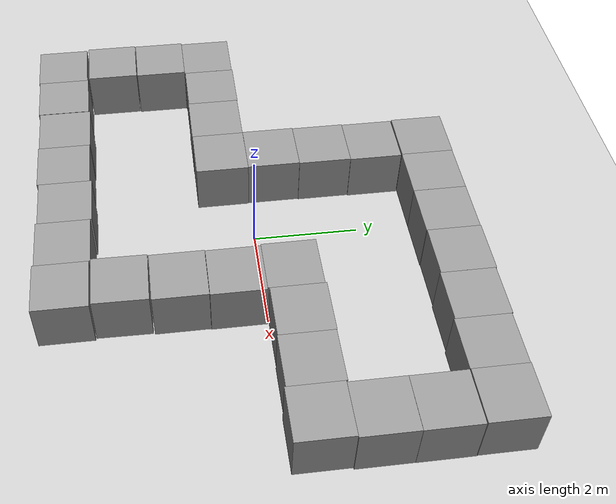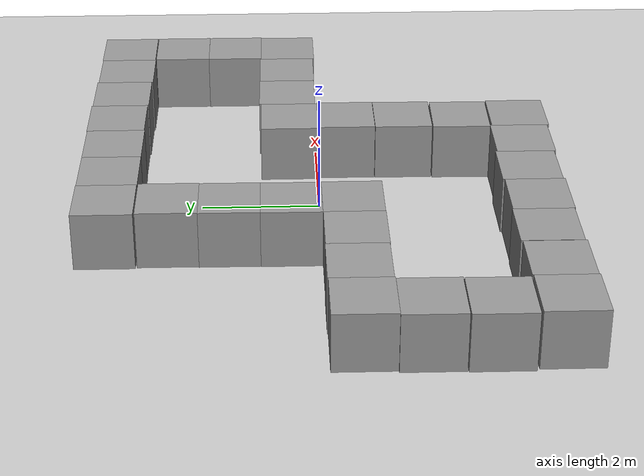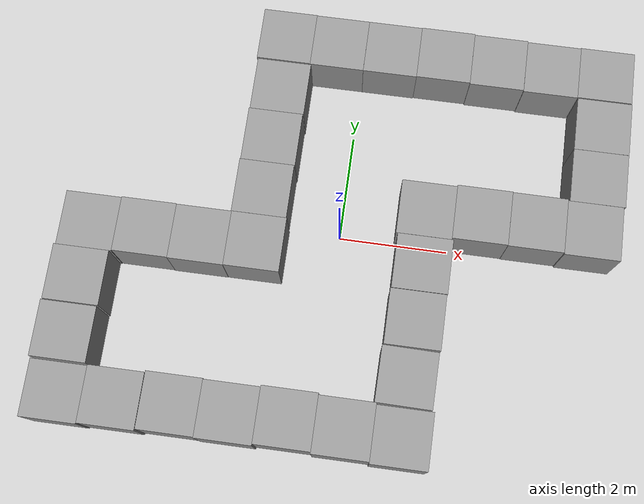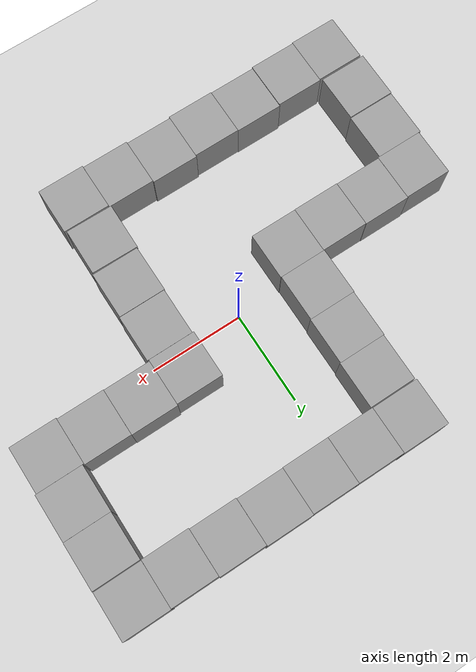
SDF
<sdf version="1.4">
 <world name="default">
  <light name="sun" type="directional">
   <pose>0 0 10 0 -0 0</pose>
   <diffuse>0.8 0.8 0.8 1</diffuse>
   <specular>0.2 0.2 0.2 1</specular>
   <attenuation>
    <range>1000</range>
    <constant>0.9</constant>
    <linear>0.01</linear>
    <quadratic>0.001</quadratic>
   </attenuation>
   <direction>-0.5 0.1 -0.9</direction>
  </light>
  <model name="ground_plane">
   <static>1</static>
   <link name="link">
    <collision name="collision">
     <geometry><plane><normal>0 0 1</normal><size>100 100</size></plane></geometry>
     <surface><friction><ode><mu>100</mu><mu2>50</mu2></ode></friction></surface>
    </collision>
    <visual name="visual">
     <cast_shadows>0</cast_shadows>
     <geometry><plane><normal>0 0 1</normal><size>100 100</size></plane></geometry>
     <material>
      <script><uri>file://media/materials/scripts/gazebo.material</uri><name>Gazebo/Grey</name></script>
     </material>
    </visual>
    <velocity_decay><linear>0</linear><angular>0</angular></velocity_decay>
   </link>
  </model>
  <physics type="ode">
   <max_step_size>0.001</max_step_size>
   <real_time_factor>1</real_time_factor>
   <real_time_update_rate>1000</real_time_update_rate>
   <gravity>0 0 -9.8</gravity>
  </physics>
  <scene><ambient>0.4 0.4 0.4 1</ambient><background>0.7 0.7 0.7 1</background><shadows>1</shadows></scene>
  <spherical_coordinates>
   <surface_model>EARTH_WGS84</surface_model>
   <latitude_deg>0</latitude_deg>
   <longitude_deg>0</longitude_deg>
   <elevation>0</elevation>
   <heading_deg>0</heading_deg>
  </spherical_coordinates>
  <model name="unit_box_1">
   <pose>-1.45968 -0.499124 0.5 0 -0 9e-06</pose>
   <link name="link">
    <inertial>
     <mass>1</mass>
     <inertia><ixx>1</ixx><ixy>0</ixy><ixz>0</ixz><iyy>1</iyy><iyz>0</iyz><izz>1</izz></inertia>
    </inertial>
    <collision name="collision"><geometry><box><size>1 1 1</size></box></geometry></collision>
    <visual name="visual">
     <geometry><box><size>1 1 1</size></box></geometry>
     <material>
      <script><uri>file://media/materials/scripts/gazebo.material</uri><name>Gazebo/Grey</name></script>
     </material>
    </visual>
    <velocity_decay><linear>0</linear><angular>0</angular></velocity_decay>
   </link>
   <static>0</static>
  </model>
  <model name="unit_box_2">
   <pose>-1.47086 0.500953 0.5 0 0 -0.000145</pose>
   <link name="link">
    <inertial>
     <mass>1</mass>
     <inertia><ixx>1</ixx><ixy>0</ixy><ixz>0</ixz><iyy>1</iyy><iyz>0</iyz><izz>1</izz></inertia>
    </inertial>
    <collision name="collision"><geometry><box><size>1 1 1</size></box></geometry></collision>
    <visual name="visual">
     <geometry><box><size>1 1 1</size></box></geometry>
     <material>
      <script><uri>file://media/materials/scripts/gazebo.material</uri><name>Gazebo/Grey</name></script>
     </material>
    </visual>
    <velocity_decay><linear>0</linear><angular>0</angular></velocity_decay>
   </link>
   <static>0</static>
  </model>
  <model name="unit_box_3">
   <pose>-1.45802 1.50095 0.5 -0 -0 -0.000148</pose>
   <link name="link">
    <inertial>
     <mass>1</mass>
     <inertia><ixx>1</ixx><ixy>0</ixy><ixz>0</ixz><iyy>1</iyy><iyz>0</iyz><izz>1</izz></inertia>
    </inertial>
    <collision name="collision"><geometry><box><size>1 1 1</size></box></geometry></collision>
    <visual name="visual">
     <geometry><box><size>1 1 1</size></box></geometry>
     <material>
      <script><uri>file://media/materials/scripts/gazebo.material</uri><name>Gazebo/Grey</name></script>
     </material>
    </visual>
    <velocity_decay><linear>0</linear><angular>0</angular></velocity_decay>
   </link>
   <static>0</static>
  </model>
  <model name="unit_box_4">
   <pose>-1.44332 2.50095 0.5 0 -0 -0.000155</pose>
   <link name="link">
    <inertial>
     <mass>1</mass>
     <inertia><ixx>1</ixx><ixy>0</ixy><ixz>0</ixz><iyy>1</iyy><iyz>0</iyz><izz>1</izz></inertia>
    </inertial>
    <collision name="collision"><geometry><box><size>1 1 1</size></box></geometry></collision>
    <visual name="visual">
     <geometry><box><size>1 1 1</size></box></geometry>
     <material>
      <script><uri>file://media/materials/scripts/gazebo.material</uri><name>Gazebo/Grey</name></script>
     </material>
    </visual>
    <velocity_decay><linear>0</linear><angular>0</angular></velocity_decay>
   </link>
   <static>0</static>
  </model>
  <model name="unit_box_5">
   <pose>-2.45968 -0.503258 0.5 0 -0 1.3e-05</pose>
   <link name="link">
    <inertial>
     <mass>1</mass>
     <inertia><ixx>1</ixx><ixy>0</ixy><ixz>0</ixz><iyy>1</iyy><iyz>0</iyz><izz>1</izz></inertia>
    </inertial>
    <collision name="collision"><geometry><box><size>1 1 1</size></box></geometry></collision>
    <visual name="visual">
     <geometry><box><size>1 1 1</size></box></geometry>
     <material>
      <script><uri>file://media/materials/scripts/gazebo.material</uri><name>Gazebo/Grey</name></script>
     </material>
    </visual>
    <velocity_decay><linear>0</linear><angular>0</angular></velocity_decay>
   </link>
   <static>0</static>
  </model>
  <model name="unit_box_6">
   <pose>-3.45969 -0.495964 0.5 0 -0 9e-06</pose>
   <link name="link">
    <inertial>
     <mass>1</mass>
     <inertia><ixx>1</ixx><ixy>0</ixy><ixz>0</ixz><iyy>1</iyy><iyz>0</iyz><izz>1</izz></inertia>
    </inertial>
    <collision name="collision"><geometry><box><size>1 1 1</size></box></geometry></collision>
    <visual name="visual">
     <geometry><box><size>1 1 1</size></box></geometry>
     <material>
      <script><uri>file://media/materials/scripts/gazebo.material</uri><name>Gazebo/Grey</name></script>
     </material>
    </visual>
    <velocity_decay><linear>0</linear><angular>0</angular></velocity_decay>
   </link>
   <static>0</static>
  </model>
  <model name="unit_box_7">
   <pose>1.54004 -0.511689 0.5 0 0 -0.000123</pose>
   <link name="link">
    <inertial>
     <mass>1</mass>
     <inertia><ixx>1</ixx><ixy>0</ixy><ixz>0</ixz><iyy>1</iyy><iyz>0</iyz><izz>1</izz></inertia>
    </inertial>
    <collision name="collision"><geometry><box><size>1 1 1</size></box></geometry></collision>
    <visual name="visual">
     <geometry><box><size>1 1 1</size></box></geometry>
     <material>
      <script><uri>file://media/materials/scripts/gazebo.material</uri><name>Gazebo/Grey</name></script>
     </material>
    </visual>
    <velocity_decay><linear>0</linear><angular>0</angular></velocity_decay>
   </link>
   <static>0</static>
  </model>
  <model name="unit_box_8">
   <pose>1.50851 0.488693 0.5 0 0 -0.000188</pose>
   <link name="link">
    <inertial>
     <mass>1</mass>
     <inertia><ixx>1</ixx><ixy>0</ixy><ixz>0</ixz><iyy>1</iyy><iyz>0</iyz><izz>1</izz></inertia>
    </inertial>
    <collision name="collision"><geometry><box><size>1 1 1</size></box></geometry></collision>
    <visual name="visual">
     <geometry><box><size>1 1 1</size></box></geometry>
     <material>
      <script><uri>file://media/materials/scripts/gazebo.material</uri><name>Gazebo/Grey</name></script>
     </material>
    </visual>
    <velocity_decay><linear>0</linear><angular>0</angular></velocity_decay>
   </link>
   <static>0</static>
  </model>
  <model name="unit_box_9">
   <pose>3.50857 0.507548 0.5 -0 -0 -0.00028</pose>
   <link name="link">
    <inertial>
     <mass>1</mass>
     <inertia><ixx>1</ixx><ixy>0</ixy><ixz>0</ixz><iyy>1</iyy><iyz>0</iyz><izz>1</izz></inertia>
    </inertial>
    <collision name="collision"><geometry><box><size>1 1 1</size></box></geometry></collision>
    <visual name="visual">
     <geometry><box><size>1 1 1</size></box></geometry>
     <material>
      <script><uri>file://media/materials/scripts/gazebo.material</uri><name>Gazebo/Grey</name></script>
     </material>
    </visual>
    <velocity_decay><linear>0</linear><angular>0</angular></velocity_decay>
   </link>
   <static>0</static>
  </model>
  <model name="unit_box_10">
   <pose>1.52702 -1.51699 0.5 0 -0 0</pose>
   <link name="link">
    <inertial>
     <mass>1</mass>
     <inertia><ixx>1</ixx><ixy>0</ixy><ixz>0</ixz><iyy>1</iyy><iyz>0</iyz><izz>1</izz></inertia>
    </inertial>
    <collision name="collision"><geometry><box><size>1 1 1</size></box></geometry></collision>
    <visual name="visual">
     <geometry><box><size>1 1 1</size></box></geometry>
     <material>
      <script><uri>file://media/materials/scripts/gazebo.material</uri><name>Gazebo/Grey</name></script>
     </material>
    </visual>
    <velocity_decay><linear>0</linear><angular>0</angular></velocity_decay>
   </link>
   <static>0</static>
  </model>
  <model name="unit_box_11">
   <pose>1.50079 -2.53931 0.5 0 0 -0.013563</pose>
   <link name="link">
    <inertial>
     <mass>1</mass>
     <inertia><ixx>1</ixx><ixy>0</ixy><ixz>0</ixz><iyy>1</iyy><iyz>0</iyz><izz>1</izz></inertia>
    </inertial>
    <collision name="collision"><geometry><box><size>1 1 1</size></box></geometry></collision>
    <visual name="visual">
     <geometry><box><size>1 1 1</size></box></geometry>
     <material>
      <script><uri>file://media/materials/scripts/gazebo.material</uri><name>Gazebo/Grey</name></script>
     </material>
    </visual>
    <velocity_decay><linear>0</linear><angular>0</angular></velocity_decay>
   </link>
   <static>0</static>
  </model>
  <model name="unit_box_12">
   <pose>2.50854 0.516937 0.5 0 0 -0.000209</pose>
   <link name="link">
    <inertial>
     <mass>1</mass>
     <inertia><ixx>1</ixx><ixy>0</ixy><ixz>0</ixz><iyy>1</iyy><iyz>0</iyz><izz>1</izz></inertia>
    </inertial>
    <collision name="collision"><geometry><box><size>1 1 1</size></box></geometry></collision>
    <visual name="visual">
     <geometry><box><size>1 1 1</size></box></geometry>
     <material>
      <script><uri>file://media/materials/scripts/gazebo.material</uri><name>Gazebo/Grey</name></script>
     </material>
    </visual>
    <velocity_decay><linear>0</linear><angular>0</angular></velocity_decay>
   </link>
   <static>0</static>
  </model>
  <model name="unit_box_13">
   <pose>1.53251 -3.56532 0.5 0 -0 -0.001281</pose>
   <link name="link">
    <inertial>
     <mass>1</mass>
     <inertia><ixx>1</ixx><ixy>0</ixy><ixz>0</ixz><iyy>1</iyy><iyz>0</iyz><izz>1</izz></inertia>
    </inertial>
    <collision name="collision"><geometry><box><size>1 1 1</size></box></geometry></collision>
    <visual name="visual">
     <geometry><box><size>1 1 1</size></box></geometry>
     <material>
      <script><uri>file://media/materials/scripts/gazebo.material</uri><name>Gazebo/Grey</name></script>
     </material>
    </visual>
    <velocity_decay><linear>0</linear><angular>0</angular></velocity_decay>
   </link>
   <static>0</static>
  </model>
  <model name="unit_box_14">
   <pose>0.532552 -3.53237 0.5 0 -0 -0.001288</pose>
   <link name="link">
    <inertial>
     <mass>1</mass>
     <inertia><ixx>1</ixx><ixy>0</ixy><ixz>0</ixz><iyy>1</iyy><iyz>0</iyz><izz>1</izz></inertia>
    </inertial>
    <collision name="collision"><geometry><box><size>1 1 1</size></box></geometry></collision>
    <visual name="visual">
     <geometry><box><size>1 1 1</size></box></geometry>
     <material>
      <script><uri>file://media/materials/scripts/gazebo.material</uri><name>Gazebo/Grey</name></script>
     </material>
    </visual>
    <velocity_decay><linear>0</linear><angular>0</angular></velocity_decay>
   </link>
   <static>0</static>
  </model>
  <model name="unit_box_15">
   <pose>-0.46743 -3.49946 0.5 0 0 -0.001279</pose>
   <link name="link">
    <inertial>
     <mass>1</mass>
     <inertia><ixx>1</ixx><ixy>0</ixy><ixz>0</ixz><iyy>1</iyy><iyz>0</iyz><izz>1</izz></inertia>
    </inertial>
    <collision name="collision"><geometry><box><size>1 1 1</size></box></geometry></collision>
    <visual name="visual">
     <geometry><box><size>1 1 1</size></box></geometry>
     <material>
      <script><uri>file://media/materials/scripts/gazebo.material</uri><name>Gazebo/Grey</name></script>
     </material>
    </visual>
    <velocity_decay><linear>0</linear><angular>0</angular></velocity_decay>
   </link>
   <static>0</static>
  </model>
  <model name="unit_box_16">
   <pose>-1.46748 -3.5281 0.5 0 0 -0.001277</pose>
   <link name="link">
    <inertial>
     <mass>1</mass>
     <inertia><ixx>1</ixx><ixy>0</ixy><ixz>0</ixz><iyy>1</iyy><iyz>0</iyz><izz>1</izz></inertia>
    </inertial>
    <collision name="collision"><geometry><box><size>1 1 1</size></box></geometry></collision>
    <visual name="visual">
     <geometry><box><size>1 1 1</size></box></geometry>
     <material>
      <script><uri>file://media/materials/scripts/gazebo.material</uri><name>Gazebo/Grey</name></script>
     </material>
    </visual>
    <velocity_decay><linear>0</linear><angular>0</angular></velocity_decay>
   </link>
   <static>0</static>
  </model>
  <model name="unit_box_17">
   <pose>-2.46747 -3.51496 0.5 0 0 -0.001263</pose>
   <link name="link">
    <inertial>
     <mass>1</mass>
     <inertia><ixx>1</ixx><ixy>0</ixy><ixz>0</ixz><iyy>1</iyy><iyz>0</iyz><izz>1</izz></inertia>
    </inertial>
    <collision name="collision"><geometry><box><size>1 1 1</size></box></geometry></collision>
    <visual name="visual">
     <geometry><box><size>1 1 1</size></box></geometry>
     <material>
      <script><uri>file://media/materials/scripts/gazebo.material</uri><name>Gazebo/Grey</name></script>
     </material>
    </visual>
    <velocity_decay><linear>0</linear><angular>0</angular></velocity_decay>
   </link>
   <static>0</static>
  </model>
  <model name="unit_box_18">
   <pose>-3.47427 -3.54314 0.5 0 -0 2.6e-05</pose>
   <link name="link">
    <inertial>
     <mass>1</mass>
     <inertia><ixx>1</ixx><ixy>0</ixy><ixz>0</ixz><iyy>1</iyy><iyz>0</iyz><izz>1</izz></inertia>
    </inertial>
    <collision name="collision"><geometry><box><size>1 1 1</size></box></geometry></collision>
    <visual name="visual">
     <geometry><box><size>1 1 1</size></box></geometry>
     <material>
      <script><uri>file://media/materials/scripts/gazebo.material</uri><name>Gazebo/Grey</name></script>
     </material>
    </visual>
    <velocity_decay><linear>0</linear><angular>0</angular></velocity_decay>
   </link>
   <static>0</static>
  </model>
  <model name="unit_box_19">
   <pose>-1.4681 3.52257 0.5 0 -0 1.1e-05</pose>
   <link name="link">
    <inertial>
     <mass>1</mass>
     <inertia><ixx>1</ixx><ixy>0</ixy><ixz>0</ixz><iyy>1</iyy><iyz>0</iyz><izz>1</izz></inertia>
    </inertial>
    <collision name="collision"><geometry><box><size>1 1 1</size></box></geometry></collision>
    <visual name="visual">
     <geometry><box><size>1 1 1</size></box></geometry>
     <material>
      <script><uri>file://media/materials/scripts/gazebo.material</uri><name>Gazebo/Grey</name></script>
     </material>
    </visual>
    <velocity_decay><linear>0</linear><angular>0</angular></velocity_decay>
   </link>
   <static>0</static>
  </model>
  <model name="unit_box_20">
   <pose>-0.468078 3.51571 0.5 0 -0 4.4e-05</pose>
   <link name="link">
    <inertial>
     <mass>1</mass>
     <inertia><ixx>1</ixx><ixy>0</ixy><ixz>0</ixz><iyy>1</iyy><iyz>0</iyz><izz>1</izz></inertia>
    </inertial>
    <collision name="collision"><geometry><box><size>1 1 1</size></box></geometry></collision>
    <visual name="visual">
     <geometry><box><size>1 1 1</size></box></geometry>
     <material>
      <script><uri>file://media/materials/scripts/gazebo.material</uri><name>Gazebo/Grey</name></script>
     </material>
    </visual>
    <velocity_decay><linear>0</linear><angular>0</angular></velocity_decay>
   </link>
   <static>0</static>
  </model>
  <model name="unit_box_21">
   <pose>0.532049 3.51619 0.5 0 -0 0.000272</pose>
   <link name="link">
    <inertial>
     <mass>1</mass>
     <inertia><ixx>1</ixx><ixy>0</ixy><ixz>0</ixz><iyy>1</iyy><iyz>0</iyz><izz>1</izz></inertia>
    </inertial>
    <collision name="collision"><geometry><box><size>1 1 1</size></box></geometry></collision>
    <visual name="visual">
     <geometry><box><size>1 1 1</size></box></geometry>
     <material>
      <script><uri>file://media/materials/scripts/gazebo.material</uri><name>Gazebo/Grey</name></script>
     </material>
    </visual>
    <velocity_decay><linear>0</linear><angular>0</angular></velocity_decay>
   </link>
   <static>0</static>
  </model>
  <model name="unit_box_22">
   <pose>1.53211 3.52553 0.5 0 -0 0.000348</pose>
   <link name="link">
    <inertial>
     <mass>1</mass>
     <inertia><ixx>1</ixx><ixy>0</ixy><ixz>0</ixz><iyy>1</iyy><iyz>0</iyz><izz>1</izz></inertia>
    </inertial>
    <collision name="collision"><geometry><box><size>1 1 1</size></box></geometry></collision>
    <visual name="visual">
     <geometry><box><size>1 1 1</size></box></geometry>
     <material>
      <script><uri>file://media/materials/scripts/gazebo.material</uri><name>Gazebo/Grey</name></script>
     </material>
    </visual>
    <velocity_decay><linear>0</linear><angular>0</angular></velocity_decay>
   </link>
   <static>0</static>
  </model>
  <model name="unit_box_23">
   <pose>2.53216 3.50819 0.5 0 -0 0.000432</pose>
   <link name="link">
    <inertial>
     <mass>1</mass>
     <inertia><ixx>1</ixx><ixy>0</ixy><ixz>0</ixz><iyy>1</iyy><iyz>0</iyz><izz>1</izz></inertia>
    </inertial>
    <collision name="collision"><geometry><box><size>1 1 1</size></box></geometry></collision>
    <visual name="visual">
     <geometry><box><size>1 1 1</size></box></geometry>
     <material>
      <script><uri>file://media/materials/scripts/gazebo.material</uri><name>Gazebo/Grey</name></script>
     </material>
    </visual>
    <velocity_decay><linear>0</linear><angular>0</angular></velocity_decay>
   </link>
   <static>0</static>
  </model>
  <model name="unit_box_24">
   <pose>3.53224 3.48928 0.5 0 -0 0.000558</pose>
   <link name="link">
    <inertial>
     <mass>1</mass>
     <inertia><ixx>1</ixx><ixy>0</ixy><ixz>0</ixz><iyy>1</iyy><iyz>0</iyz><izz>1</izz></inertia>
    </inertial>
    <collision name="collision"><geometry><box><size>1 1 1</size></box></geometry></collision>
    <visual name="visual">
     <geometry><box><size>1 1 1</size></box></geometry>
     <material>
      <script><uri>file://media/materials/scripts/gazebo.material</uri><name>Gazebo/Grey</name></script>
     </material>
    </visual>
    <velocity_decay><linear>0</linear><angular>0</angular></velocity_decay>
   </link>
   <static>0</static>
  </model>
  <model name="unit_box_25">
   <pose>4.53226 3.49983 0.5 0 -0 0.000608</pose>
   <link name="link">
    <inertial>
     <mass>1</mass>
     <inertia><ixx>1</ixx><ixy>0</ixy><ixz>0</ixz><iyy>1</iyy><iyz>0</iyz><izz>1</izz></inertia>
    </inertial>
    <collision name="collision"><geometry><box><size>1 1 1</size></box></geometry></collision>
    <visual name="visual">
     <geometry><box><size>1 1 1</size></box></geometry>
     <material>
      <script><uri>file://media/materials/scripts/gazebo.material</uri><name>Gazebo/Grey</name></script>
     </material>
    </visual>
    <velocity_decay><linear>0</linear><angular>0</angular></velocity_decay>
   </link>
   <static>0</static>
  </model>
  <model name="unit_box_26">
   <pose>4.54019 2.48352 0.5 0 -0 0.000534</pose>
   <link name="link">
    <inertial>
     <mass>1</mass>
     <inertia><ixx>1</ixx><ixy>0</ixy><ixz>0</ixz><iyy>1</iyy><iyz>0</iyz><izz>1</izz></inertia>
    </inertial>
    <collision name="collision"><geometry><box><size>1 1 1</size></box></geometry></collision>
    <visual name="visual">
     <geometry><box><size>1 1 1</size></box></geometry>
     <material>
      <script><uri>file://media/materials/scripts/gazebo.material</uri><name>Gazebo/Grey</name></script>
     </material>
    </visual>
    <velocity_decay><linear>0</linear><angular>0</angular></velocity_decay>
   </link>
   <static>0</static>
  </model>
  <model name="unit_box_27">
   <pose>4.53699 1.4831 0.5 0 0 -0.000273</pose>
   <link name="link">
    <inertial>
     <mass>1</mass>
     <inertia><ixx>1</ixx><ixy>0</ixy><ixz>0</ixz><iyy>1</iyy><iyz>0</iyz><izz>1</izz></inertia>
    </inertial>
    <collision name="collision"><geometry><box><size>1 1 1</size></box></geometry></collision>
    <visual name="visual">
     <geometry><box><size>1 1 1</size></box></geometry>
     <material>
      <script><uri>file://media/materials/scripts/gazebo.material</uri><name>Gazebo/Grey</name></script>
     </material>
    </visual>
    <velocity_decay><linear>0</linear><angular>0</angular></velocity_decay>
   </link>
   <static>0</static>
  </model>
  <model name="unit_box_28">
   <pose>4.5086 0.482978 0.5 0 0 -0.000219</pose>
   <link name="link">
    <inertial>
     <mass>1</mass>
     <inertia><ixx>1</ixx><ixy>0</ixy><ixz>0</ixz><iyy>1</iyy><iyz>0</iyz><izz>1</izz></inertia>
    </inertial>
    <collision name="collision"><geometry><box><size>1 1 1</size></box></geometry></collision>
    <visual name="visual">
     <geometry><box><size>1 1 1</size></box></geometry>
     <material>
      <script><uri>file://media/materials/scripts/gazebo.material</uri><name>Gazebo/Grey</name></script>
     </material>
    </visual>
    <velocity_decay><linear>0</linear><angular>0</angular></velocity_decay>
   </link>
   <static>0</static>
  </model>
  <model name="unit_box_29">
   <pose>-4.45978 -0.509522 0.5 0 0 -0.000156</pose>
   <link name="link">
    <inertial>
     <mass>1</mass>
     <inertia><ixx>1</ixx><ixy>0</ixy><ixz>0</ixz><iyy>1</iyy><iyz>0</iyz><izz>1</izz></inertia>
    </inertial>
    <collision name="collision"><geometry><box><size>1 1 1</size></box></geometry></collision>
    <visual name="visual">
     <geometry><box><size>1 1 1</size></box></geometry>
     <material>
      <script><uri>file://media/materials/scripts/gazebo.material</uri><name>Gazebo/Grey</name></script>
     </material>
    </visual>
    <velocity_decay><linear>0</linear><angular>0</angular></velocity_decay>
   </link>
   <static>0</static>
  </model>
  <model name="unit_box_30">
   <pose>-4.47427 -3.56185 0.5 0 -0 2.6e-05</pose>
   <link name="link">
    <inertial>
     <mass>1</mass>
     <inertia><ixx>1</ixx><ixy>0</ixy><ixz>0</ixz><iyy>1</iyy><iyz>0</iyz><izz>1</izz></inertia>
    </inertial>
    <collision name="collision"><geometry><box><size>1 1 1</size></box></geometry></collision>
    <visual name="visual">
     <geometry><box><size>1 1 1</size></box></geometry>
     <material>
      <script><uri>file://media/materials/scripts/gazebo.material</uri><name>Gazebo/Grey</name></script>
     </material>
    </visual>
    <velocity_decay><linear>0</linear><angular>0</angular></velocity_decay>
   </link>
   <static>0</static>
  </model>
  <model name="unit_box_31">
   <pose>-4.51442 -2.5257 0.5 0 -0 0</pose>
   <link name="link">
    <inertial>
     <mass>1</mass>
     <inertia><ixx>1</ixx><ixy>0</ixy><ixz>0</ixz><iyy>1</iyy><iyz>0</iyz><izz>1</izz></inertia>
    </inertial>
    <collision name="collision"><geometry><box><size>1 1 1</size></box></geometry></collision>
    <visual name="visual">
     <geometry><box><size>1 1 1</size></box></geometry>
     <material>
      <script><uri>file://media/materials/scripts/gazebo.material</uri><name>Gazebo/Grey</name></script>
     </material>
    </visual>
    <velocity_decay><linear>0</linear><angular>0</angular></velocity_decay>
   </link>
   <static>0</static>
  </model>
  <model name="unit_box_32">
   <pose>-4.4973 -1.50953 0.5 0 0 -0.000185</pose>
   <link name="link">
    <inertial>
     <mass>1</mass>
     <inertia><ixx>1</ixx><ixy>0</ixy><ixz>0</ixz><iyy>1</iyy><iyz>0</iyz><izz>1</izz></inertia>
    </inertial>
    <collision name="collision"><geometry><box><size>1 1 1</size></box></geometry></collision>
    <visual name="visual">
     <geometry><box><size>1 1 1</size></box></geometry>
     <material>
      <script><uri>file://media/materials/scripts/gazebo.material</uri><name>Gazebo/Grey</name></script>
     </material>
    </visual>
    <velocity_decay><linear>0</linear><angular>0</angular></velocity_decay>
   </link>
   <static>0</static>
  </model>
 </world>
</sdf>
